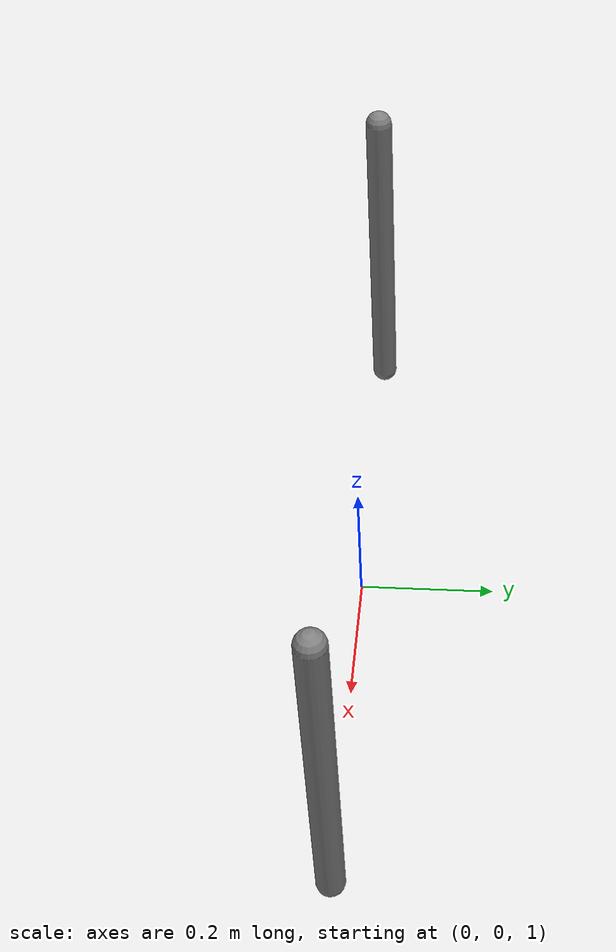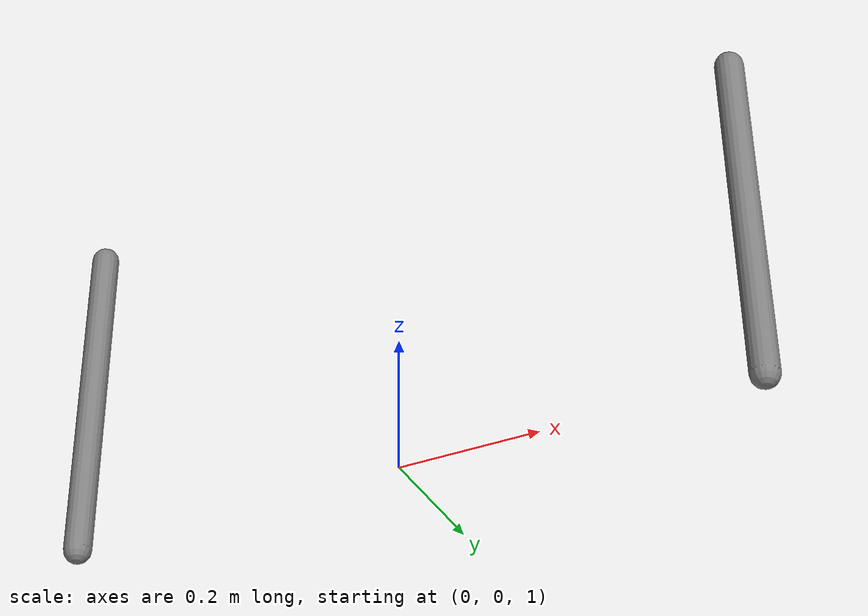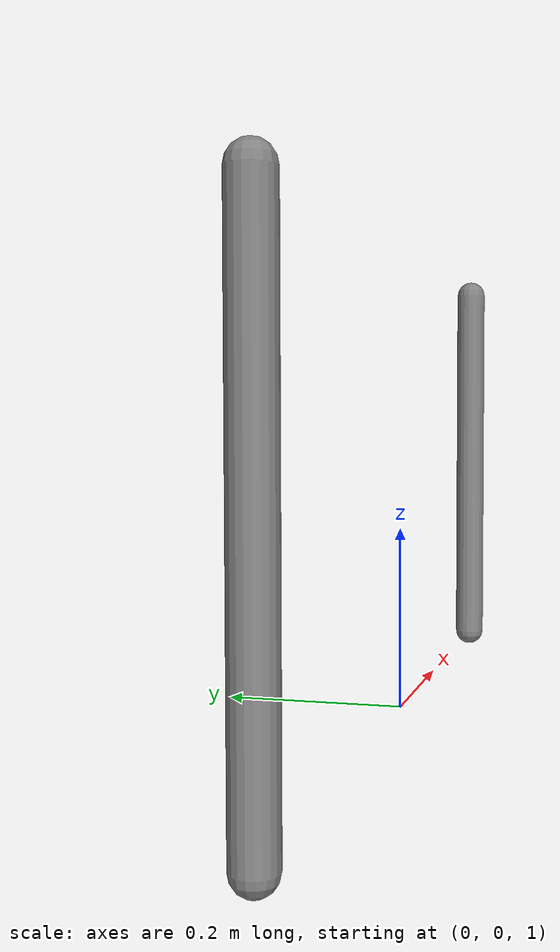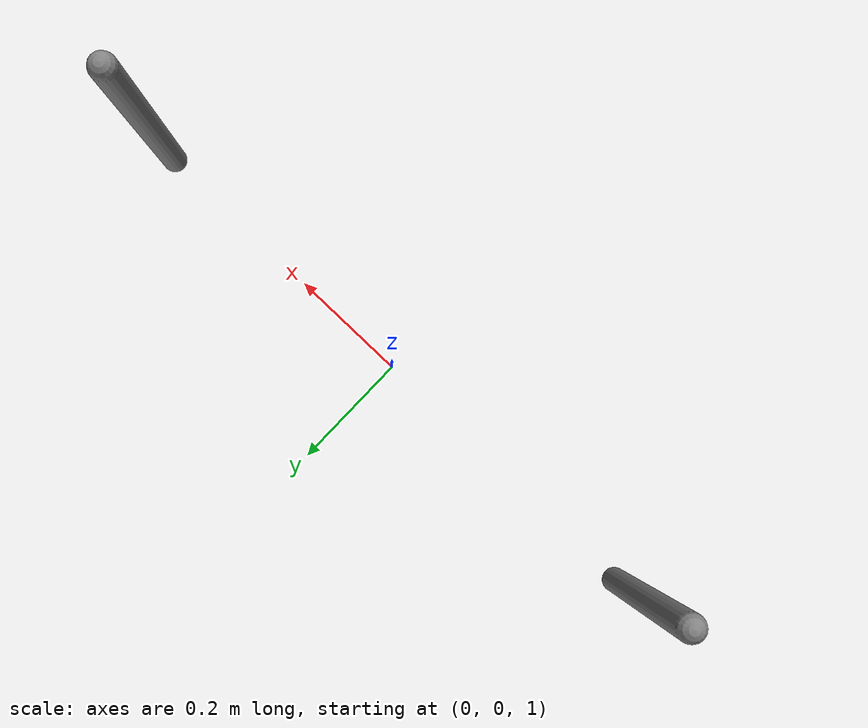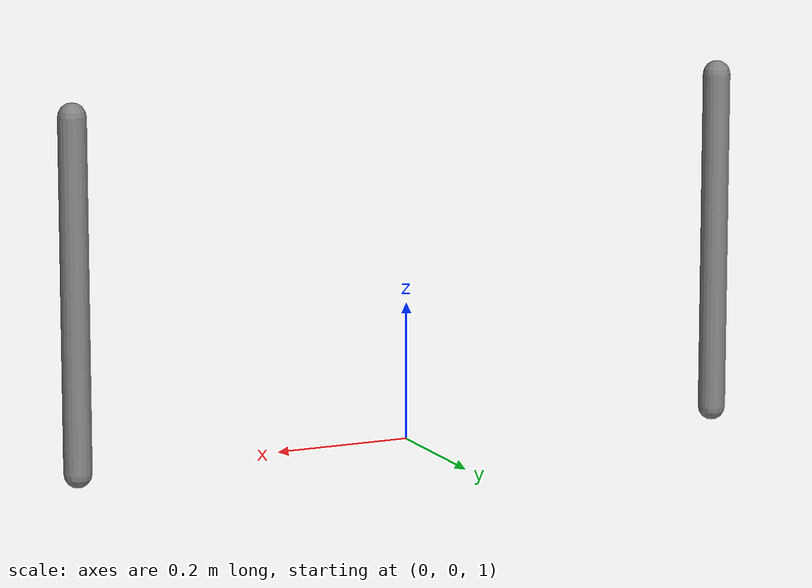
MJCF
<mujoco model="solref-compare">
  <compiler angle="degree"/>
  <option gravity="0 0 -9.81" timestep="0.002"/>
  <worldbody>
    <body name="pivot_stiff" pos="-0.5 0 1.5">
      <body name="rod_stiff" pos="0 0 0">
        <joint name="stiff" type="hinge" axis="0 1 0"
               limited="true" range="-45 45" ref="60"
               solreflimit="0.005 1.0"/>
        <geom type="capsule" fromto="0 0 0 0 0 -0.5" size="0.02" mass="1.0"/>
      </body>
    </body>
    <body name="pivot_soft" pos="0.5 0 1.5">
      <body name="rod_soft" pos="0 0 0">
        <joint name="soft" type="hinge" axis="0 1 0"
               limited="true" range="-45 45" ref="60"
               solreflimit="0.08 1.0"/>
        <geom type="capsule" fromto="0 0 0 0 0 -0.5" size="0.02" mass="1.0"/>
      </body>
    </body>
  </worldbody>
  <sensor>
    <jointlimitfrc name="stiff_lf" joint="stiff"/>
    <jointlimitfrc name="soft_lf" joint="soft"/>
  </sensor>
</mujoco>
